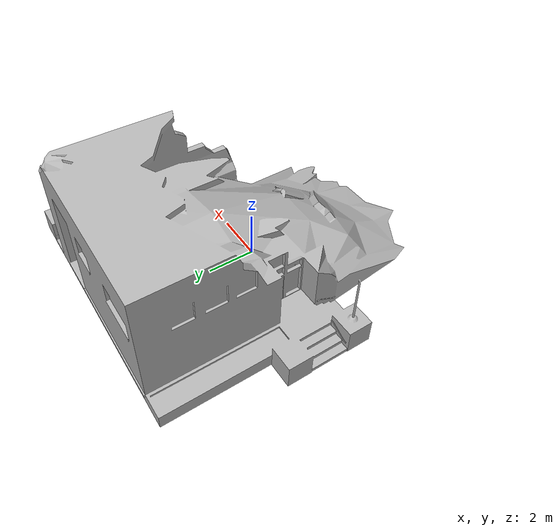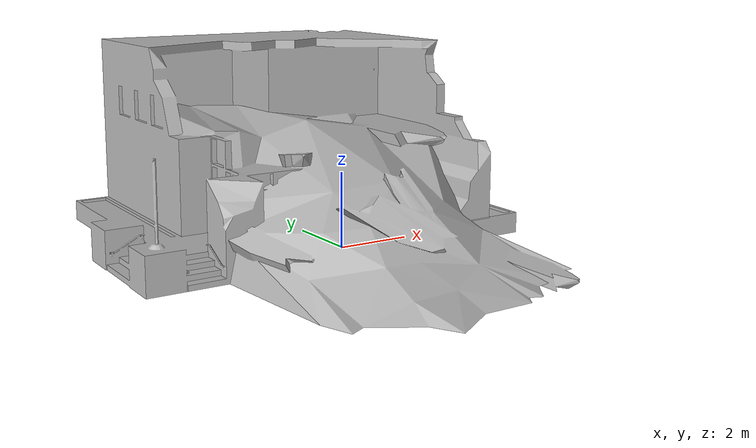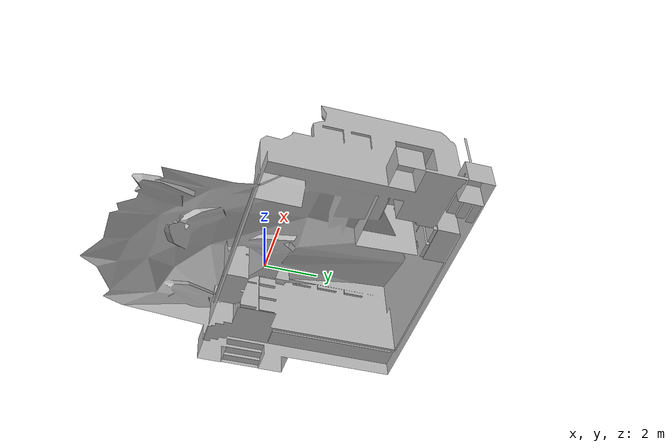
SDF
<?xml version="1.0" ?>
<sdf version="1.6">
  <model name="collapsed_police_station">
    <static>true</static>
    <link name="link">
      <collision name="collision">
        <geometry>
          <mesh>
               <scale>0.6 0.6 0.6</scale>
            <uri>model://collapsed_police_station/meshes/collapsed_police_station.dae</uri>
          </mesh>
        </geometry>
      </collision>
      <visual name="visual">
        <geometry>
          <mesh>
               <scale>0.6 0.6 0.6</scale>
            <uri>model://collapsed_police_station/meshes/collapsed_police_station.dae</uri>
          </mesh>
        </geometry>
      </visual>
    </link>
  </model>
</sdf>
